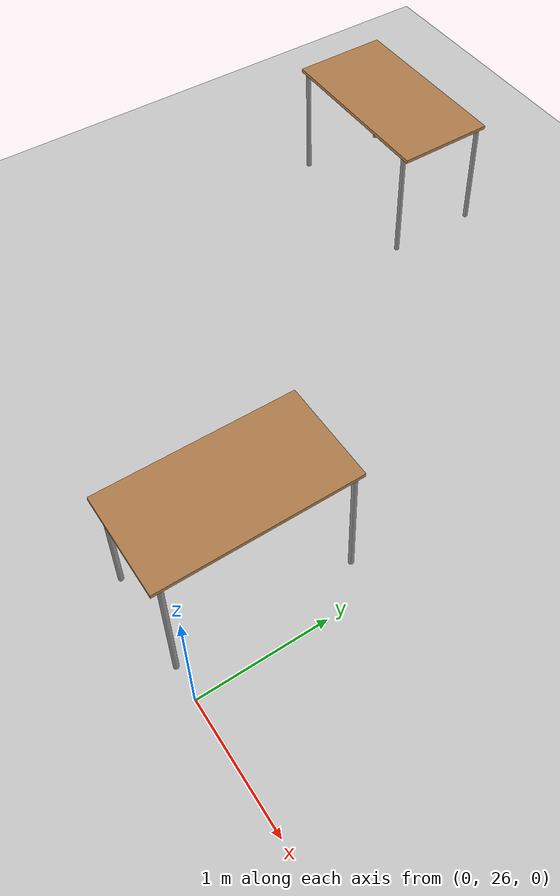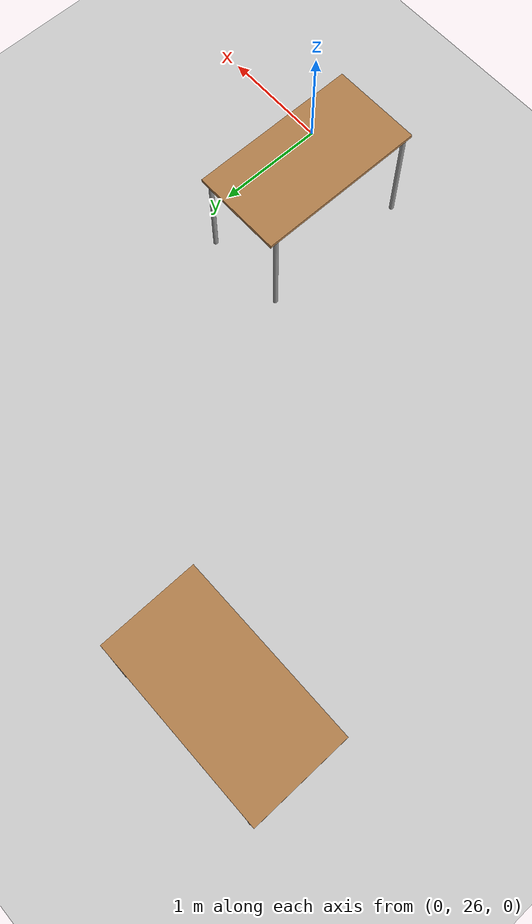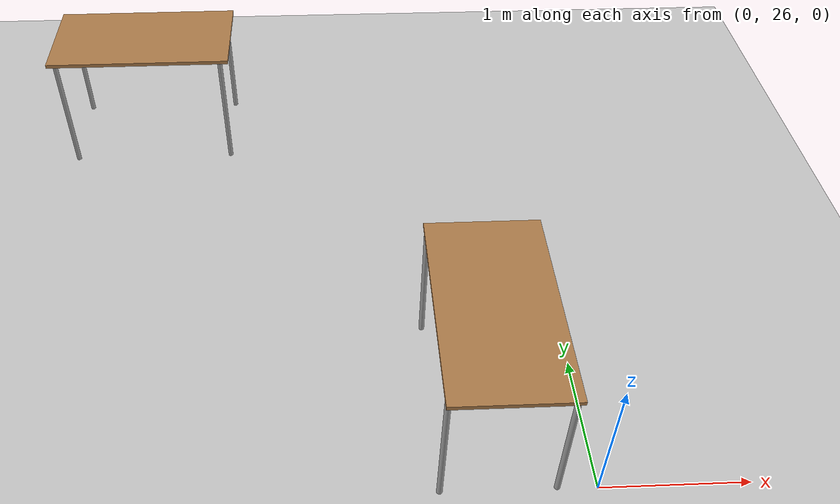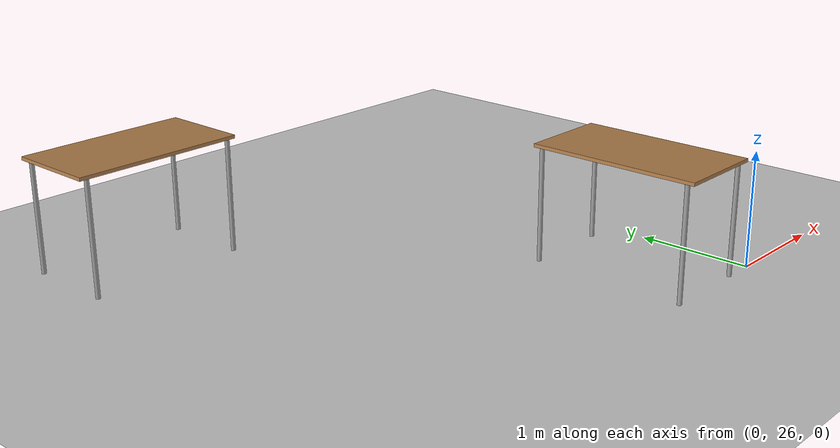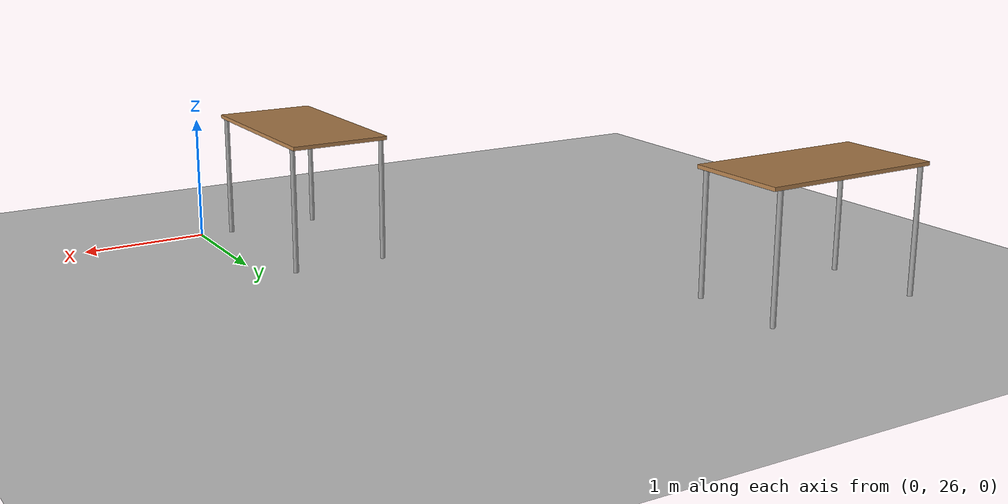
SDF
<sdf version="1.6">
 <world name="default">
  <model name="ground_plane">
   <static>1</static>
   <link name="link">
    <collision name="collision">
     <geometry><plane><normal>0 0 1</normal><size>100 100</size></plane></geometry>
     <surface>
      <contact><collide_bitmask>65535</collide_bitmask></contact>
      <friction><ode><mu>100</mu><mu2>50</mu2></ode></friction>
     </surface>
    </collision>
    <visual name="visual">
     <cast_shadows>0</cast_shadows>
     <geometry><plane><normal>0 0 1</normal><size>100 100</size></plane></geometry>
     <material>
      <script><uri>file://media/materials/scripts/gazebo.material</uri><name>Gazebo/Grey</name></script>
     </material>
    </visual>
   </link>
   <pose>-3.51447 11.9136 0 0 -0 0</pose>
  </model>
  <model name="table_clone_clone_4">
   <static>1</static>
   <link name="link">
    <collision name="surface">
     <pose>0 0 1 0 -0 0</pose>
     <geometry><box><size>1.5 0.8 0.03</size></box></geometry>
     <surface><friction><ode><mu>0.6</mu><mu2>0.6</mu2></ode></friction></surface>
    </collision>
    <visual name="visual1">
     <pose>0 0 1 0 -0 0</pose>
     <geometry><box><size>1.5 0.8 0.03</size></box></geometry>
     <material>
      <script><uri>file://media/materials/scripts/gazebo.material</uri><name>Gazebo/Wood</name></script>
     </material>
    </visual>
    <collision name="front_left_leg">
     <pose>0.68 0.38 0.5 0 -0 0</pose>
     <geometry><cylinder><radius>0.02</radius><length>1</length></cylinder></geometry>
    </collision>
    <visual name="front_left_leg">
     <pose>0.68 0.38 0.5 0 -0 0</pose>
     <geometry><cylinder><radius>0.02</radius><length>1</length></cylinder></geometry>
     <material>
      <script><uri>file://media/materials/scripts/gazebo.material</uri><name>Gazebo/Grey</name></script>
     </material>
    </visual>
    <collision name="front_right_leg">
     <pose>0.68 -0.38 0.5 0 -0 0</pose>
     <geometry><cylinder><radius>0.02</radius><length>1</length></cylinder></geometry>
    </collision>
    <visual name="front_right_leg">
     <pose>0.68 -0.38 0.5 0 -0 0</pose>
     <geometry><cylinder><radius>0.02</radius><length>1</length></cylinder></geometry>
     <material>
      <script><uri>file://media/materials/scripts/gazebo.material</uri><name>Gazebo/Grey</name></script>
     </material>
    </visual>
    <collision name="back_right_leg">
     <pose>-0.68 -0.38 0.5 0 -0 0</pose>
     <geometry><cylinder><radius>0.02</radius><length>1</length></cylinder></geometry>
    </collision>
    <visual name="back_right_leg">
     <pose>-0.68 -0.38 0.5 0 -0 0</pose>
     <geometry><cylinder><radius>0.02</radius><length>1</length></cylinder></geometry>
     <material>
      <script><uri>file://media/materials/scripts/gazebo.material</uri><name>Gazebo/Grey</name></script>
     </material>
    </visual>
    <collision name="back_left_leg">
     <pose>-0.68 0.38 0.5 0 -0 0</pose>
     <geometry><cylinder><radius>0.02</radius><length>1</length></cylinder></geometry>
    </collision>
    <visual name="back_left_leg">
     <pose>-0.68 0.38 0.5 0 -0 0</pose>
     <geometry><cylinder><radius>0.02</radius><length>1</length></cylinder></geometry>
     <material>
      <script><uri>file://media/materials/scripts/gazebo.material</uri><name>Gazebo/Grey</name></script>
     </material>
    </visual>
   </link>
   <pose>-0.645454 26.6913 0 0 0 -1.56764</pose>
  </model>
  <model name="table_clone_clone_4_clone_1_clone">
   <static>1</static>
   <link name="link">
    <collision name="surface">
     <pose>0 0 1 0 -0 0</pose>
     <geometry><box><size>1.5 0.8 0.03</size></box></geometry>
     <surface><friction><ode><mu>0.6</mu><mu2>0.6</mu2></ode></friction></surface>
    </collision>
    <visual name="visual1">
     <pose>0 0 1 0 -0 0</pose>
     <geometry><box><size>1.5 0.8 0.03</size></box></geometry>
     <material>
      <script><uri>file://media/materials/scripts/gazebo.material</uri><name>Gazebo/Wood</name></script>
     </material>
    </visual>
    <collision name="front_left_leg">
     <pose>0.68 0.38 0.5 0 -0 0</pose>
     <geometry><cylinder><radius>0.02</radius><length>1</length></cylinder></geometry>
    </collision>
    <visual name="front_left_leg">
     <pose>0.68 0.38 0.5 0 -0 0</pose>
     <geometry><cylinder><radius>0.02</radius><length>1</length></cylinder></geometry>
     <material>
      <script><uri>file://media/materials/scripts/gazebo.material</uri><name>Gazebo/Grey</name></script>
     </material>
    </visual>
    <collision name="front_right_leg">
     <pose>0.68 -0.38 0.5 0 -0 0</pose>
     <geometry><cylinder><radius>0.02</radius><length>1</length></cylinder></geometry>
    </collision>
    <visual name="front_right_leg">
     <pose>0.68 -0.38 0.5 0 -0 0</pose>
     <geometry><cylinder><radius>0.02</radius><length>1</length></cylinder></geometry>
     <material>
      <script><uri>file://media/materials/scripts/gazebo.material</uri><name>Gazebo/Grey</name></script>
     </material>
    </visual>
    <collision name="back_right_leg">
     <pose>-0.68 -0.38 0.5 0 -0 0</pose>
     <geometry><cylinder><radius>0.02</radius><length>1</length></cylinder></geometry>
    </collision>
    <visual name="back_right_leg">
     <pose>-0.68 -0.38 0.5 0 -0 0</pose>
     <geometry><cylinder><radius>0.02</radius><length>1</length></cylinder></geometry>
     <material>
      <script><uri>file://media/materials/scripts/gazebo.material</uri><name>Gazebo/Grey</name></script>
     </material>
    </visual>
    <collision name="back_left_leg">
     <pose>-0.68 0.38 0.5 0 -0 0</pose>
     <geometry><cylinder><radius>0.02</radius><length>1</length></cylinder></geometry>
    </collision>
    <visual name="back_left_leg">
     <pose>-0.68 0.38 0.5 0 -0 0</pose>
     <geometry><cylinder><radius>0.02</radius><length>1</length></cylinder></geometry>
     <material>
      <script><uri>file://media/materials/scripts/gazebo.material</uri><name>Gazebo/Grey</name></script>
     </material>
    </visual>
   </link>
   <pose>-3.26426 29.848 0 0 0 -3.13623</pose>
  </model>
 </world>
</sdf>
